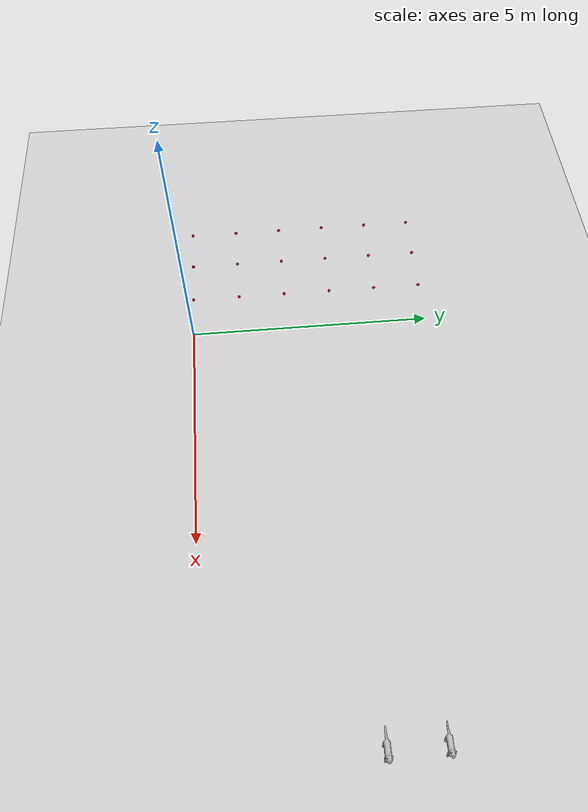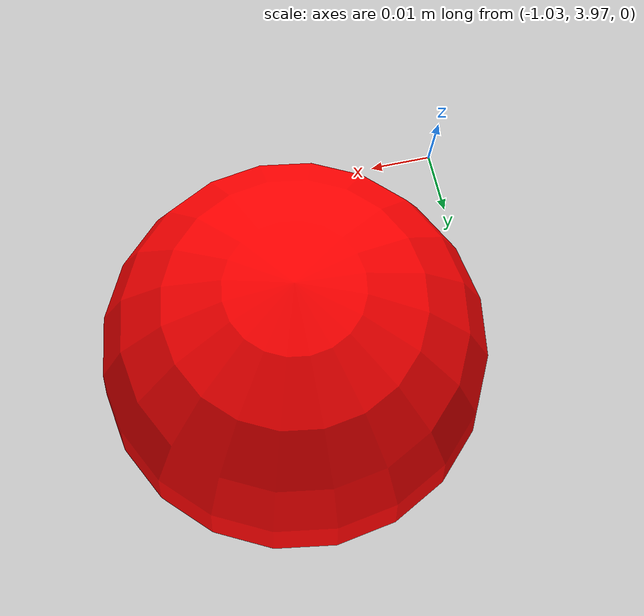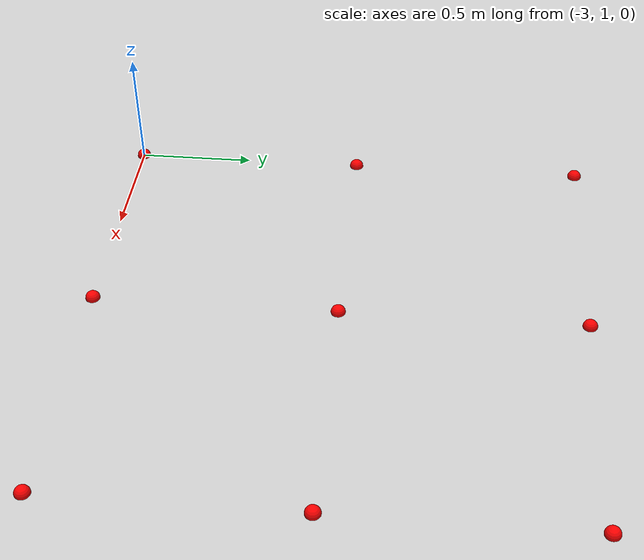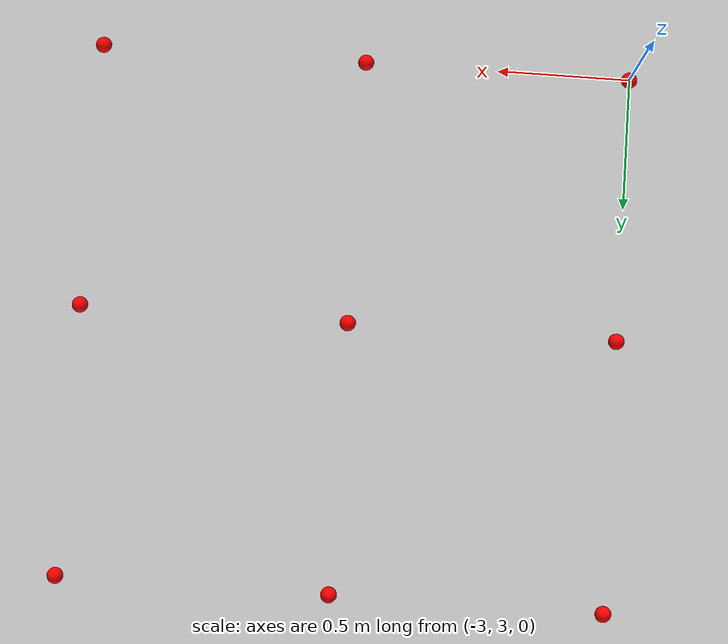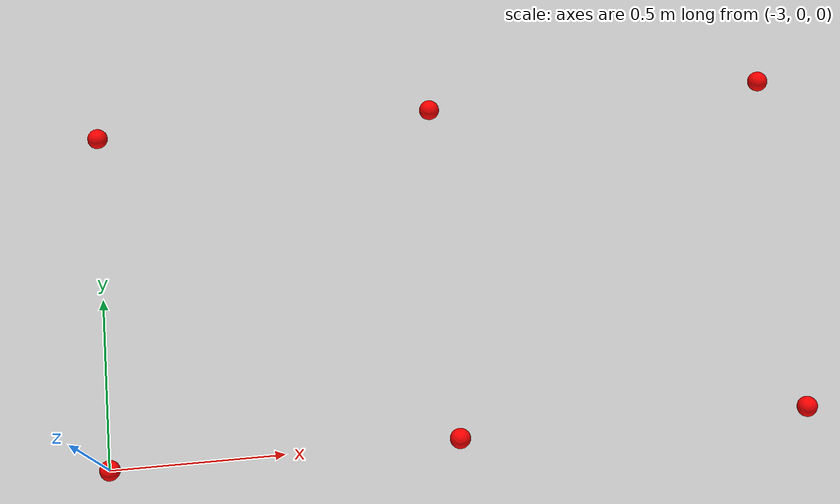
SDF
<sdf version="1.4">
 <world name="default">
  <include><uri>model://sun</uri></include>
  <include><uri>model://ground_plane</uri></include>
  <physics type="ode">
   <max_step_size>0.001</max_step_size>
   <real_time_factor>1</real_time_factor>
   <real_time_update_rate>1000</real_time_update_rate>
   <ode>
    <solver>
     <type>quick</type>
     <iters>100</iters>
     <precon_iters>0</precon_iters>
     <sor>1.400000</sor>
     <use_dynamic_moi_rescaling>1</use_dynamic_moi_rescaling>
    </solver>
    <constraints>
     <cfm>0.00001</cfm>
     <erp>0.2</erp>
     <contact_max_correcting_vel>2000.000000</contact_max_correcting_vel>
     <contact_surface_layer>0.01000</contact_surface_layer>
    </constraints>
   </ode>
  </physics>
  <include><uri>model://cat_orange</uri><pose>9.0 4.0 0 0 0 0</pose></include>
  <include><uri>model://cat_black</uri><pose>9.0 3.0 0 0 0 0</pose></include>
  <include><uri>model://rocket</uri><name>rocket1</name><pose>-1 0 0 0 0 0</pose></include>
  <include><uri>model://rocket</uri><name>rocket2</name><pose>-1 1 0 0 0 0</pose></include>
  <include><uri>model://rocket</uri><name>rocket3</name><pose>-1 2 0 0 0 0</pose></include>
  <include><uri>model://rocket</uri><name>rocket4</name><pose>-1 3 0 0 0 0</pose></include>
  <include><uri>model://rocket</uri><name>rocket5</name><pose>-1 4 0 0 0 0</pose></include>
  <include><uri>model://rocket</uri><name>rocket6</name><pose>-1 5 0 0 0 0</pose></include>
  <include><uri>model://rocket</uri><name>rocket7</name><pose>-2 0 0 0 0 0</pose></include>
  <include><uri>model://rocket</uri><name>rocket8</name><pose>-2 1 0 0 0 0</pose></include>
  <include><uri>model://rocket</uri><name>rocket9</name><pose>-2 2 0 0 0 0</pose></include>
  <include><uri>model://rocket</uri><name>rocket10</name><pose>-2 3 0 0 0 0</pose></include>
  <include><uri>model://rocket</uri><name>rocket11</name><pose>-2 4 0 0 0 0</pose></include>
  <include><uri>model://rocket</uri><name>rocket12</name><pose>-2 5 0 0 0 0</pose></include>
  <include><uri>model://rocket</uri><name>rocket13</name><pose>-3 0 0 0 0 0</pose></include>
  <include><uri>model://rocket</uri><name>rocket14</name><pose>-3 1 0 0 0 0</pose></include>
  <include><uri>model://rocket</uri><name>rocket15</name><pose>-3 2 0 0 0 0</pose></include>
  <include><uri>model://rocket</uri><name>rocket16</name><pose>-3 3 0 0 0 0</pose></include>
  <include><uri>model://rocket</uri><name>rocket17</name><pose>-3 4 0 0 0 0</pose></include>
  <include><uri>model://rocket</uri><name>rocket18</name><pose>-3 5 0 0 0 0</pose></include>
  <scene><ambient>0.4 0.4 0.4 1</ambient><background>0.7 0.7 0.7 1</background><shadows>false</shadows></scene>
 </world>
</sdf>

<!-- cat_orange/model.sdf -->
<sdf version="1.5">
  <model name="cat_orange">
    <link name="body">
      <pose>0 0 0 0 0 0</pose>
      <collision name="collision">
        <geometry>
            <box>
              <size>0.32 0.1 0.14</size>
            </box>
        </geometry>
        <pose>0 0 0.2 0 0 0</pose>
      </collision>
      <visual name="visual">
        <geometry>
          <mesh>
            <uri>model://cat_orange/meshes/cat_orange.obj</uri>
            <scale>0.01 0.01 0.01</scale>
          </mesh>
        </geometry>
        <pose>0 0 0 0 0 1.570796327</pose>
      </visual>
      <inertial>
        <inertia>
          <ixx>0.009867</ixx>
          <ixy>0</ixy>
          <ixz>0</ixz>
          <iyy>0.04067</iyy>
          <iyz>0</iyz>
          <izz>0.03747</izz>
        </inertia>
        <mass>4</mass>
        <pose>0 0 0.2 0 0 0</pose>
      </inertial>
      <sensor name="body_contact_sensor" type="contact">
        <always_on>true</always_on>
        <contact>
          <collision>collision</collision>
          <topic>/cats/contacts</topic>
        </contact>
      </sensor>
    </link>
    <joint name="head_joint" type="fixed">
      <parent>body</parent>
      <child>head</child>
    </joint>
    <link name="head">
      <collision name="collision">
        <geometry>
          <sphere>
            <radius>0.055</radius>
          </sphere>
        </geometry>
      </collision>
      <inertial>
        <inertia>
          <ixx>0.0003417</ixx>
          <ixy>0</ixy>
          <ixz>0</ixz>
          <iyy>0.0003417</iyy>
          <iyz>0</iyz>
          <izz>0.0004167</izz>
        </inertia>
        <mass>0.25</mass>
      </inertial>
      <pose>0.155 0 0.3 0 0 0</pose>
      <sensor name="head_contact_sensor" type="contact">
        <always_on>true</always_on>
        <contact>
          <collision>collision</collision>
          <topic>/cats/contacts</topic>
        </contact>
      </sensor>
    </link>
    <joint name="front_legs_joint" type="fixed">
      <parent>body</parent>
      <child>front_legs</child>
    </joint>
    <link name="front_legs">
      <collision name="collision">
        <geometry>
            <box>
              <size>0.03 0.1 0.14</size>
            </box>
        </geometry>
      </collision>
      <inertial>
        <inertia>
          <ixx>0.0006167</ixx>
          <ixy>0</ixy>
          <ixz>0</ixz>
          <iyy>0.0004417</iyy>
          <iyz>0</iyz>
          <izz>0.00024167</izz>
        </inertia>
        <mass>0.25</mass>
      </inertial>
      <pose>0.1 0 0.07 0 0 0</pose>
    </link>
    <joint name="rear_legs_joint" type="fixed">
      <parent>body</parent>
      <child>rear_legs</child>
    </joint>
    <link name="rear_legs">
      <collision name="collision">
        <geometry>
            <box>
              <size>0.04 0.1 0.14</size>
            </box>
        </geometry>
      </collision>
      <inertial>
        <inertia>
          <ixx>0.0006167</ixx>
          <ixy>0</ixy>
          <ixz>0</ixz>
          <iyy>0.0004417</iyy>
          <iyz>0</iyz>
          <izz>0.00024167</izz>
        </inertia>
        <mass>0.25</mass>
      </inertial>
      <pose>-0.14 0 0.07 0 0 0</pose>
    </link>
    <!-- The pose of every cat on one topic, named after each, for the cats controller -->
    <plugin filename="gz-sim-odometry-publisher-system" name="gz::sim::systems::OdometryPublisher">
      <dimensions>3</dimensions>
      <odom_publish_frequency>10</odom_publish_frequency>
      <odom_topic>/cats/odometry</odom_topic>
    </plugin>
  </model>
</sdf>

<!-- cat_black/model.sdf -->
<sdf version="1.5">
  <model name="cat_black">
    <link name="body">
      <pose>0 0 0 0 0 0</pose>
      <collision name="collision">
        <geometry>
            <box>
              <size>0.32 0.1 0.14</size>
            </box>
        </geometry>
        <pose>0 0 0.2 0 0 0</pose>
      </collision>
      <visual name="visual">
        <geometry>
          <mesh>
            <uri>model://cat_black/meshes/cat_black.obj</uri>
            <scale>0.01 0.01 0.01</scale>
          </mesh>
        </geometry>
        <pose>-0.09 0 0 0 0 1.570796327</pose>
      </visual>
      <inertial>
        <inertia>
          <ixx>0.009867</ixx>
          <ixy>0</ixy>
          <ixz>0</ixz>
          <iyy>0.04067</iyy>
          <iyz>0</iyz>
          <izz>0.03747</izz>
        </inertia>
        <mass>4</mass>
        <pose>0 0 0.2 0 0 0</pose>
      </inertial>
      <sensor name="body_contact_sensor" type="contact">
        <always_on>true</always_on>
        <contact>
          <collision>collision</collision>
          <topic>/cats/contacts</topic>
        </contact>
      </sensor>
    </link>
    <joint name="head_joint" type="fixed">
      <parent>body</parent>
      <child>head</child>
    </joint>
    <link name="head">
      <collision name="collision">
        <geometry>
          <sphere>
            <radius>0.055</radius>
          </sphere>
        </geometry>
      </collision>
      <inertial>
        <inertia>
          <ixx>0.0003417</ixx>
          <ixy>0</ixy>
          <ixz>0</ixz>
          <iyy>0.0003417</iyy>
          <iyz>0</iyz>
          <izz>0.0004167</izz>
        </inertia>
        <mass>0.25</mass>
      </inertial>
      <pose>0.15 0 0.3 0 0 0</pose>
      <sensor name="head_contact_sensor" type="contact">
        <always_on>true</always_on>
        <contact>
          <collision>collision</collision>
          <topic>/cats/contacts</topic>
        </contact>
      </sensor>
    </link>
    <joint name="front_legs_joint" type="fixed">
      <parent>body</parent>
      <child>front_legs</child>
    </joint>
    <link name="front_legs">
      <collision name="collision">
        <geometry>
            <box>
              <size>0.03 0.1 0.14</size>
            </box>
        </geometry>
      </collision>
      <inertial>
        <inertia>
          <ixx>0.0006167</ixx>
          <ixy>0</ixy>
          <ixz>0</ixz>
          <iyy>0.0004417</iyy>
          <iyz>0</iyz>
          <izz>0.00024167</izz>
        </inertia>
        <mass>0.25</mass>
      </inertial>
      <pose>0.1 0 0.07 0 0 0</pose>
    </link>
    <joint name="rear_legs_joint" type="fixed">
      <parent>body</parent>
      <child>rear_legs</child>
    </joint>
    <link name="rear_legs">
      <collision name="collision">
        <geometry>
            <box>
              <size>0.04 0.1 0.14</size>
            </box>
        </geometry>
      </collision>
      <inertial>
        <inertia>
          <ixx>0.0006167</ixx>
          <ixy>0</ixy>
          <ixz>0</ixz>
          <iyy>0.0004417</iyy>
          <iyz>0</iyz>
          <izz>0.00024167</izz>
        </inertia>
        <mass>0.25</mass>
      </inertial>
      <pose>-0.14 0 0.07 0 0 0</pose>
    </link>
    <!-- The pose of every cat on one topic, named after each, for the cats controller -->
    <plugin filename="gz-sim-odometry-publisher-system" name="gz::sim::systems::OdometryPublisher">
      <dimensions>3</dimensions>
      <odom_publish_frequency>10</odom_publish_frequency>
      <odom_topic>/cats/odometry</odom_topic>
    </plugin>
  </model>
</sdf>

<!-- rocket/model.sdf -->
<sdf version='1.4'>
  <model name="rocket">
      <static>0</static>
      <link name='link'>
        <inertial>
          <mass>0.1</mass>
          <inertia>
            <ixx>9e-05</ixx>
            <ixy>0.000000</ixy>
            <ixz>0.000000</ixz>
            <iyy>9e-05</iyy>
            <iyz>0.000000</iyz>
            <izz>9e-05</izz>
          </inertia>
        </inertial>
        <collision name='collision'>
          <geometry>
            <sphere>
              <radius>0.03</radius>
            </sphere>
          </geometry>
          <surface>
            <friction>
              <ode>
                <mu>30.0</mu>
                <mu2>30.0</mu2>
              </ode>
            </friction>
            <contact>
              <ode>
                <kp>1000000.0</kp>
                <kd>100.0</kd>
                <max_vel>1.0</max_vel>
                <min_depth>0.002</min_depth>
              </ode>
            </contact>
          </surface>
        </collision>
        <visual name='visual'>
          <geometry>
            <sphere>
              <radius>0.03</radius>
            </sphere>
          </geometry>
          <material>
            <ambient>1 0 0 1</ambient>
            <diffuse>1 0 0 1</diffuse>
          </material>
        </visual>
        <velocity_decay>
          <linear>0.000000</linear>
          <angular>0.000000</angular>
        </velocity_decay>
        <self_collide>0</self_collide>
        <kinematic>0</kinematic>
        <gravity>1</gravity>
      </link>
  </model>
</sdf>
